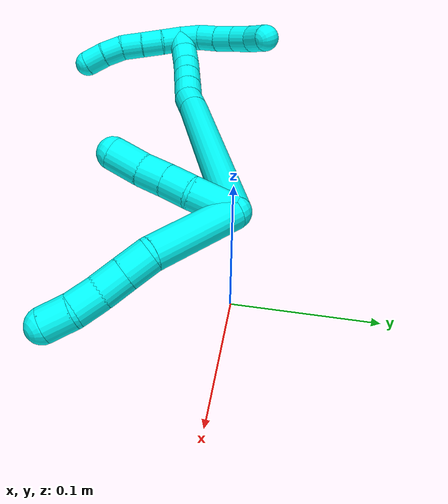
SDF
<sdf version="1.7">
 <world name="default">
  <model name="photoneo_s_sensor">
   <static>1</static>
   <pose>0 0 2 1.57079 1.57079 3.14159</pose>
   <link name="link">
    <inertial><mass>0.1</mass></inertial>
    <sensor name="sensor" type="depth">
     <update_rate>30</update_rate>
     <camera>
      <horizontal_fov>1.22</horizontal_fov>
      <image><width>1920</width><height>1200</height><format>B8G8R8</format></image>
      <clip><near>0.1</near><far>4</far></clip>
      <depth_camera><output>points</output></depth_camera>
     </camera>
     <plugin name="camera_plugin" filename="libgazebo_ros_depth_camera.so">
      <baseline>0.2</baseline>
      <alwaysOn>1</alwaysOn>
      <updateRate>0.0</updateRate>
      <cameraName>camera_ir</cameraName>
      <imageTopicName>/camera/color/image_raw</imageTopicName>
      <cameraInfoTopicName>/camera/color/camera_info</cameraInfoTopicName>
      <depthImageTopicName>/camera/depth/image_raw</depthImageTopicName>
      <depthImageCameraInfoTopicName>/camera/depth/camera_info</depthImageCameraInfoTopicName>
      <pointCloudTopicName>/camera/depth/points</pointCloudTopicName>
      <frameName>fr_optical</frameName>
      <pointCloudCutoff>0.1</pointCloudCutoff>
      <pointCloudCutoffMax>2.0</pointCloudCutoffMax>
      <distortionK1>0</distortionK1>
      <distortionK2>0</distortionK2>
      <distortionK3>0</distortionK3>
      <distortionT1>0</distortionT1>
      <distortionT2>0</distortionT2>
      <CxPrime>0</CxPrime>
      <Cx>0</Cx>
      <Cy>0</Cy>
      <focalLength>0</focalLength>
      <hackBaseline>0</hackBaseline>
     </plugin>
    </sensor>
   </link>
  </model>
  <model name="3">
   <static>0</static>
   <link name="3">
    <collision name="collision-cylinder-e_1_2_8">
     <pose>-0.002949 0.00374 -0.033526 -3.03049 -0.087199 1.33051</pose>
     <geometry><cylinder><radius>0.0125</radius><length>0.067725</length></cylinder></geometry>
     <surface>
      <friction><ode><mu>1.16</mu><mu2>1.16</mu2><slip1>0</slip1><slip2>0</slip2></ode></friction>
      <contact><ode><kp>1e+06</kp><kd>1</kd><max_vel>0</max_vel><min_depth>0.001</min_depth></ode></contact>
     </surface>
    </collision>
    <visual name="visual-cylinder-e_1_2_8">
     <pose>-0.002949 0.00374 -0.033526 -3.03049 -0.087199 1.33051</pose>
     <geometry><cylinder><radius>0.0125</radius><length>0.067725</length></cylinder></geometry>
     <material><ambient>0.003922 1 0.996078 1</ambient></material>
    </visual>
    <collision name="collision-cylinder-e_2_8_9">
     <pose>-0.006161 0.012074 -0.076469 -2.6878 -0.025093 0.108586</pose>
     <geometry><cylinder><radius>0.0125</radius><length>0.020963</length></cylinder></geometry>
     <surface>
      <friction><ode><mu>1.16</mu><mu2>1.16</mu2><slip1>0</slip1><slip2>0</slip2></ode></friction>
      <contact><ode><kp>1e+06</kp><kd>1</kd><max_vel>0</max_vel><min_depth>0.001</min_depth></ode></contact>
     </surface>
    </collision>
    <visual name="visual-cylinder-e_2_8_9">
     <pose>-0.006161 0.012074 -0.076469 -2.6878 -0.025093 0.108586</pose>
     <geometry><cylinder><radius>0.0125</radius><length>0.020963</length></cylinder></geometry>
     <material><ambient>0.003922 1 0.996078 1</ambient></material>
    </visual>
    <collision name="collision-cylinder-e_3_9_10">
     <pose>-0.006572 0.021055 -0.094916 -2.68925 -0.014737 0.064025</pose>
     <geometry><cylinder><radius>0.0125</radius><length>0.02008</length></cylinder></geometry>
     <surface>
      <friction><ode><mu>1.16</mu><mu2>1.16</mu2><slip1>0</slip1><slip2>0</slip2></ode></friction>
      <contact><ode><kp>1e+06</kp><kd>1</kd><max_vel>0</max_vel><min_depth>0.001</min_depth></ode></contact>
     </surface>
    </collision>
    <visual name="visual-cylinder-e_3_9_10">
     <pose>-0.006572 0.021055 -0.094916 -2.68925 -0.014737 0.064025</pose>
     <geometry><cylinder><radius>0.0125</radius><length>0.02008</length></cylinder></geometry>
     <material><ambient>0.003922 1 0.996078 1</ambient></material>
    </visual>
    <collision name="collision-cylinder-e_4_10_11">
     <pose>-0.007107 0.028713 -0.11358 -2.81431 -0.038069 0.229573</pose>
     <geometry><cylinder><radius>0.0125</radius><length>0.020364</length></cylinder></geometry>
     <surface>
      <friction><ode><mu>1.16</mu><mu2>1.16</mu2><slip1>0</slip1><slip2>0</slip2></ode></friction>
      <contact><ode><kp>1e+06</kp><kd>1</kd><max_vel>0</max_vel><min_depth>0.001</min_depth></ode></contact>
     </surface>
    </collision>
    <visual name="visual-cylinder-e_4_10_11">
     <pose>-0.007107 0.028713 -0.11358 -2.81431 -0.038069 0.229573</pose>
     <geometry><cylinder><radius>0.0125</radius><length>0.020364</length></cylinder></geometry>
     <material><ambient>0.003922 1 0.996078 1</ambient></material>
    </visual>
    <collision name="collision-cylinder-e_5_11_6">
     <pose>-0.009942 0.036893 -0.132091 -2.6364 -0.236698 0.863398</pose>
     <geometry><cylinder><radius>0.0125</radius><length>0.020868</length></cylinder></geometry>
     <surface>
      <friction><ode><mu>1.16</mu><mu2>1.16</mu2><slip1>0</slip1><slip2>0</slip2></ode></friction>
      <contact><ode><kp>1e+06</kp><kd>1</kd><max_vel>0</max_vel><min_depth>0.001</min_depth></ode></contact>
     </surface>
    </collision>
    <visual name="visual-cylinder-e_5_11_6">
     <pose>-0.009942 0.036893 -0.132091 -2.6364 -0.236698 0.863398</pose>
     <geometry><cylinder><radius>0.0125</radius><length>0.020868</length></cylinder></geometry>
     <material><ambient>0.003922 1 0.996078 1</ambient></material>
    </visual>
    <collision name="collision-cylinder-e_1_2_12">
     <pose>-0.01453 0.001617 -0.007274 -2.92282 -1.09691 2.78589</pose>
     <geometry><cylinder><radius>0.0125</radius><length>0.032659</length></cylinder></geometry>
     <surface>
      <friction><ode><mu>1.16</mu><mu2>1.16</mu2><slip1>0</slip1><slip2>0</slip2></ode></friction>
      <contact><ode><kp>1e+06</kp><kd>1</kd><max_vel>0</max_vel><min_depth>0.001</min_depth></ode></contact>
     </surface>
    </collision>
    <visual name="visual-cylinder-e_1_2_12">
     <pose>-0.01453 0.001617 -0.007274 -2.92282 -1.09691 2.78589</pose>
     <geometry><cylinder><radius>0.0125</radius><length>0.032659</length></cylinder></geometry>
     <material><ambient>0.003922 1 0.996078 1</ambient></material>
    </visual>
    <collision name="collision-cylinder-e_2_12_13">
     <pose>-0.038533 0.006084 -0.017227 -2.32529 -1.17928 1.99397</pose>
     <geometry><cylinder><radius>0.0125</radius><length>0.020497</length></cylinder></geometry>
     <surface>
      <friction><ode><mu>1.16</mu><mu2>1.16</mu2><slip1>0</slip1><slip2>0</slip2></ode></friction>
      <contact><ode><kp>1e+06</kp><kd>1</kd><max_vel>0</max_vel><min_depth>0.001</min_depth></ode></contact>
     </surface>
    </collision>
    <visual name="visual-cylinder-e_2_12_13">
     <pose>-0.038533 0.006084 -0.017227 -2.32529 -1.17928 1.99397</pose>
     <geometry><cylinder><radius>0.0125</radius><length>0.020497</length></cylinder></geometry>
     <material><ambient>0.003922 1 0.996078 1</ambient></material>
    </visual>
    <collision name="collision-cylinder-e_3_13_14">
     <pose>-0.057263 0.011731 -0.022956 -2.39926 -1.15033 2.06022</pose>
     <geometry><cylinder><radius>0.0125</radius><length>0.02028</length></cylinder></geometry>
     <surface>
      <friction><ode><mu>1.16</mu><mu2>1.16</mu2><slip1>0</slip1><slip2>0</slip2></ode></friction>
      <contact><ode><kp>1e+06</kp><kd>1</kd><max_vel>0</max_vel><min_depth>0.001</min_depth></ode></contact>
     </surface>
    </collision>
    <visual name="visual-cylinder-e_3_13_14">
     <pose>-0.057263 0.011731 -0.022956 -2.39926 -1.15033 2.06022</pose>
     <geometry><cylinder><radius>0.0125</radius><length>0.02028</length></cylinder></geometry>
     <material><ambient>0.003922 1 0.996078 1</ambient></material>
    </visual>
    <collision name="collision-cylinder-e_4_14_5">
     <pose>-0.079009 0.016558 -0.030043 -2.6761 -1.22368 2.49001</pose>
     <geometry><cylinder><radius>0.0125</radius><length>0.026564</length></cylinder></geometry>
     <surface>
      <friction><ode><mu>1.16</mu><mu2>1.16</mu2><slip1>0</slip1><slip2>0</slip2></ode></friction>
      <contact><ode><kp>1e+06</kp><kd>1</kd><max_vel>0</max_vel><min_depth>0.001</min_depth></ode></contact>
     </surface>
    </collision>
    <visual name="visual-cylinder-e_4_14_5">
     <pose>-0.079009 0.016558 -0.030043 -2.6761 -1.22368 2.49001</pose>
     <geometry><cylinder><radius>0.0125</radius><length>0.026564</length></cylinder></geometry>
     <material><ambient>0.003922 1 0.996078 1</ambient></material>
    </visual>
    <collision name="collision-cylinder-e_1_2_15">
     <pose>-0.064557 0.038051 0.046451 -0.686312 -0.821581 0.308775</pose>
     <geometry><cylinder><radius>0.0125</radius><length>0.176331</length></cylinder></geometry>
     <surface>
      <friction><ode><mu>1.16</mu><mu2>1.16</mu2><slip1>0</slip1><slip2>0</slip2></ode></friction>
      <contact><ode><kp>1e+06</kp><kd>1</kd><max_vel>0</max_vel><min_depth>0.001</min_depth></ode></contact>
     </surface>
    </collision>
    <visual name="visual-cylinder-e_1_2_15">
     <pose>-0.064557 0.038051 0.046451 -0.686312 -0.821581 0.308775</pose>
     <geometry><cylinder><radius>0.0125</radius><length>0.176331</length></cylinder></geometry>
     <material><ambient>0.003922 1 0.996078 1</ambient></material>
    </visual>
    <collision name="collision-cylinder-e_2_15_16">
     <pose>-0.137865 0.08078 0.098384 -0.706458 -0.881882 0.344545</pose>
     <geometry><cylinder><radius>0.0125</radius><length>0.022673</length></cylinder></geometry>
     <surface>
      <friction><ode><mu>1.16</mu><mu2>1.16</mu2><slip1>0</slip1><slip2>0</slip2></ode></friction>
      <contact><ode><kp>1e+06</kp><kd>1</kd><max_vel>0</max_vel><min_depth>0.001</min_depth></ode></contact>
     </surface>
    </collision>
    <visual name="visual-cylinder-e_2_15_16">
     <pose>-0.137865 0.08078 0.098384 -0.706458 -0.881882 0.344545</pose>
     <geometry><cylinder><radius>0.0125</radius><length>0.022673</length></cylinder></geometry>
     <material><ambient>0.003922 1 0.996078 1</ambient></material>
    </visual>
    <collision name="collision-cylinder-e_3_16_17">
     <pose>-0.154252 0.088153 0.110402 -0.391162 -0.823878 0.172697</pose>
     <geometry><cylinder><radius>0.0125</radius><length>0.020813</length></cylinder></geometry>
     <surface>
      <friction><ode><mu>1.16</mu><mu2>1.16</mu2><slip1>0</slip1><slip2>0</slip2></ode></friction>
      <contact><ode><kp>1e+06</kp><kd>1</kd><max_vel>0</max_vel><min_depth>0.001</min_depth></ode></contact>
     </surface>
    </collision>
    <visual name="visual-cylinder-e_3_16_17">
     <pose>-0.154252 0.088153 0.110402 -0.391162 -0.823878 0.172697</pose>
     <geometry><cylinder><radius>0.0125</radius><length>0.020813</length></cylinder></geometry>
     <material><ambient>0.003922 1 0.996078 1</ambient></material>
    </visual>
    <collision name="collision-cylinder-e_4_17_18">
     <pose>-0.169277 0.093528 0.123248 -0.401525 -0.82284 0.177121</pose>
     <geometry><cylinder><radius>0.0125</radius><length>0.020158</length></cylinder></geometry>
     <surface>
      <friction><ode><mu>1.16</mu><mu2>1.16</mu2><slip1>0</slip1><slip2>0</slip2></ode></friction>
      <contact><ode><kp>1e+06</kp><kd>1</kd><max_vel>0</max_vel><min_depth>0.001</min_depth></ode></contact>
     </surface>
    </collision>
    <visual name="visual-cylinder-e_4_17_18">
     <pose>-0.169277 0.093528 0.123248 -0.401525 -0.82284 0.177121</pose>
     <geometry><cylinder><radius>0.0125</radius><length>0.020158</length></cylinder></geometry>
     <material><ambient>0.003922 1 0.996078 1</ambient></material>
    </visual>
    <collision name="collision-cylinder-e_5_18_19">
     <pose>-0.184019 0.098758 0.135856 -0.384882 -0.824836 0.170088</pose>
     <geometry><cylinder><radius>0.0125</radius><length>0.020024</length></cylinder></geometry>
     <surface>
      <friction><ode><mu>1.16</mu><mu2>1.16</mu2><slip1>0</slip1><slip2>0</slip2></ode></friction>
      <contact><ode><kp>1e+06</kp><kd>1</kd><max_vel>0</max_vel><min_depth>0.001</min_depth></ode></contact>
     </surface>
    </collision>
    <visual name="visual-cylinder-e_5_18_19">
     <pose>-0.184019 0.098758 0.135856 -0.384882 -0.824836 0.170088</pose>
     <geometry><cylinder><radius>0.0125</radius><length>0.020024</length></cylinder></geometry>
     <material><ambient>0.003922 1 0.996078 1</ambient></material>
    </visual>
    <collision name="collision-cylinder-e_6_19_20">
     <pose>-0.199633 0.102248 0.14771 -0.167276 -0.972143 0.08853</pose>
     <geometry><cylinder><radius>0.0125</radius><length>0.02</length></cylinder></geometry>
     <surface>
      <friction><ode><mu>1.16</mu><mu2>1.16</mu2><slip1>0</slip1><slip2>0</slip2></ode></friction>
      <contact><ode><kp>1e+06</kp><kd>1</kd><max_vel>0</max_vel><min_depth>0.001</min_depth></ode></contact>
     </surface>
    </collision>
    <visual name="visual-cylinder-e_6_19_20">
     <pose>-0.199633 0.102248 0.14771 -0.167276 -0.972143 0.08853</pose>
     <geometry><cylinder><radius>0.0125</radius><length>0.02</length></cylinder></geometry>
     <material><ambient>0.003922 1 0.996078 1</ambient></material>
    </visual>
    <collision name="collision-cylinder-e_7_20_1">
     <pose>-0.216365 0.103817 0.158544 -0.119023 -1.01048 0.065889</pose>
     <geometry><cylinder><radius>0.0125</radius><length>0.02</length></cylinder></geometry>
     <surface>
      <friction><ode><mu>1.16</mu><mu2>1.16</mu2><slip1>0</slip1><slip2>0</slip2></ode></friction>
      <contact><ode><kp>1e+06</kp><kd>1</kd><max_vel>0</max_vel><min_depth>0.001</min_depth></ode></contact>
     </surface>
    </collision>
    <visual name="visual-cylinder-e_7_20_1">
     <pose>-0.216365 0.103817 0.158544 -0.119023 -1.01048 0.065889</pose>
     <geometry><cylinder><radius>0.0125</radius><length>0.02</length></cylinder></geometry>
     <material><ambient>0.003922 1 0.996078 1</ambient></material>
    </visual>
    <collision name="collision-cylinder-e_1_1_21">
     <pose>-0.218385 0.099885 0.16995 0.640035 0.701187 0.241217</pose>
     <geometry><cylinder><radius>0.0125</radius><length>0.02</length></cylinder></geometry>
     <surface>
      <friction><ode><mu>1.16</mu><mu2>1.16</mu2><slip1>0</slip1><slip2>0</slip2></ode></friction>
      <contact><ode><kp>1e+06</kp><kd>1</kd><max_vel>0</max_vel><min_depth>0.001</min_depth></ode></contact>
     </surface>
    </collision>
    <visual name="visual-cylinder-e_1_1_21">
     <pose>-0.218385 0.099885 0.16995 0.640035 0.701187 0.241217</pose>
     <geometry><cylinder><radius>0.0125</radius><length>0.02</length></cylinder></geometry>
     <material><ambient>0.003922 1 0.996078 1</ambient></material>
    </visual>
    <collision name="collision-cylinder-e_2_21_22">
     <pose>-0.203924 0.090357 0.179424 0.977721 0.928965 0.520927</pose>
     <geometry><cylinder><radius>0.0125</radius><length>0.02</length></cylinder></geometry>
     <surface>
      <friction><ode><mu>1.16</mu><mu2>1.16</mu2><slip1>0</slip1><slip2>0</slip2></ode></friction>
      <contact><ode><kp>1e+06</kp><kd>1</kd><max_vel>0</max_vel><min_depth>0.001</min_depth></ode></contact>
     </surface>
    </collision>
    <visual name="visual-cylinder-e_2_21_22">
     <pose>-0.203924 0.090357 0.179424 0.977721 0.928965 0.520927</pose>
     <geometry><cylinder><radius>0.0125</radius><length>0.02</length></cylinder></geometry>
     <material><ambient>0.003922 1 0.996078 1</ambient></material>
    </visual>
    <collision name="collision-cylinder-e_3_22_23">
     <pose>-0.188267 0.079738 0.185861 1.07059 0.870523 0.538167</pose>
     <geometry><cylinder><radius>0.0125</radius><length>0.02</length></cylinder></geometry>
     <surface>
      <friction><ode><mu>1.16</mu><mu2>1.16</mu2><slip1>0</slip1><slip2>0</slip2></ode></friction>
      <contact><ode><kp>1e+06</kp><kd>1</kd><max_vel>0</max_vel><min_depth>0.001</min_depth></ode></contact>
     </surface>
    </collision>
    <visual name="visual-cylinder-e_3_22_23">
     <pose>-0.188267 0.079738 0.185861 1.07059 0.870523 0.538167</pose>
     <geometry><cylinder><radius>0.0125</radius><length>0.02</length></cylinder></geometry>
     <material><ambient>0.003922 1 0.996078 1</ambient></material>
    </visual>
    <collision name="collision-cylinder-e_4_23_24">
     <pose>-0.172966 0.067857 0.190578 1.31522 0.87172 0.69054</pose>
     <geometry><cylinder><radius>0.0125</radius><length>0.02</length></cylinder></geometry>
     <surface>
      <friction><ode><mu>1.16</mu><mu2>1.16</mu2><slip1>0</slip1><slip2>0</slip2></ode></friction>
      <contact><ode><kp>1e+06</kp><kd>1</kd><max_vel>0</max_vel><min_depth>0.001</min_depth></ode></contact>
     </surface>
    </collision>
    <visual name="visual-cylinder-e_4_23_24">
     <pose>-0.172966 0.067857 0.190578 1.31522 0.87172 0.69054</pose>
     <geometry><cylinder><radius>0.0125</radius><length>0.02</length></cylinder></geometry>
     <material><ambient>0.003922 1 0.996078 1</ambient></material>
    </visual>
    <collision name="collision-cylinder-e_5_24_4">
     <pose>-0.158341 0.054479 0.191709 1.64 0.771328 0.820803</pose>
     <geometry><cylinder><radius>0.0125</radius><length>0.02</length></cylinder></geometry>
     <surface>
      <friction><ode><mu>1.16</mu><mu2>1.16</mu2><slip1>0</slip1><slip2>0</slip2></ode></friction>
      <contact><ode><kp>1e+06</kp><kd>1</kd><max_vel>0</max_vel><min_depth>0.001</min_depth></ode></contact>
     </surface>
    </collision>
    <visual name="visual-cylinder-e_5_24_4">
     <pose>-0.158341 0.054479 0.191709 1.64 0.771328 0.820803</pose>
     <geometry><cylinder><radius>0.0125</radius><length>0.02</length></cylinder></geometry>
     <material><ambient>0.003922 1 0.996078 1</ambient></material>
    </visual>
    <collision name="collision-cylinder-e_1_1_25">
     <pose>-0.229171 0.106991 0.155176 -2.85551 -0.448364 2.01486</pose>
     <geometry><cylinder><radius>0.0125</radius><length>0.02</length></cylinder></geometry>
     <surface>
      <friction><ode><mu>1.16</mu><mu2>1.16</mu2><slip1>0</slip1><slip2>0</slip2></ode></friction>
      <contact><ode><kp>1e+06</kp><kd>1</kd><max_vel>0</max_vel><min_depth>0.001</min_depth></ode></contact>
     </surface>
    </collision>
    <visual name="visual-cylinder-e_1_1_25">
     <pose>-0.229171 0.106991 0.155176 -2.85551 -0.448364 2.01486</pose>
     <geometry><cylinder><radius>0.0125</radius><length>0.02</length></cylinder></geometry>
     <material><ambient>0.003922 1 0.996078 1</ambient></material>
    </visual>
    <collision name="collision-cylinder-e_2_25_26">
     <pose>-0.23864 0.112933 0.138651 -2.73438 -0.539164 1.85814</pose>
     <geometry><cylinder><radius>0.0125</radius><length>0.02</length></cylinder></geometry>
     <surface>
      <friction><ode><mu>1.16</mu><mu2>1.16</mu2><slip1>0</slip1><slip2>0</slip2></ode></friction>
      <contact><ode><kp>1e+06</kp><kd>1</kd><max_vel>0</max_vel><min_depth>0.001</min_depth></ode></contact>
     </surface>
    </collision>
    <visual name="visual-cylinder-e_2_25_26">
     <pose>-0.23864 0.112933 0.138651 -2.73438 -0.539164 1.85814</pose>
     <geometry><cylinder><radius>0.0125</radius><length>0.02</length></cylinder></geometry>
     <material><ambient>0.003922 1 0.996078 1</ambient></material>
    </visual>
    <collision name="collision-cylinder-e_3_26_27">
     <pose>-0.249216 0.12013 0.123291 -2.67171 -0.575352 1.78121</pose>
     <geometry><cylinder><radius>0.0125</radius><length>0.02</length></cylinder></geometry>
     <surface>
      <friction><ode><mu>1.16</mu><mu2>1.16</mu2><slip1>0</slip1><slip2>0</slip2></ode></friction>
      <contact><ode><kp>1e+06</kp><kd>1</kd><max_vel>0</max_vel><min_depth>0.001</min_depth></ode></contact>
     </surface>
    </collision>
    <visual name="visual-cylinder-e_3_26_27">
     <pose>-0.249216 0.12013 0.123291 -2.67171 -0.575352 1.78121</pose>
     <geometry><cylinder><radius>0.0125</radius><length>0.02</length></cylinder></geometry>
     <material><ambient>0.003922 1 0.996078 1</ambient></material>
    </visual>
    <collision name="collision-cylinder-e_4_27_28">
     <pose>-0.258427 0.129097 0.108123 -2.54971 -0.386519 1.14128</pose>
     <geometry><cylinder><radius>0.0125</radius><length>0.02</length></cylinder></geometry>
     <surface>
      <friction><ode><mu>1.16</mu><mu2>1.16</mu2><slip1>0</slip1><slip2>0</slip2></ode></friction>
      <contact><ode><kp>1e+06</kp><kd>1</kd><max_vel>0</max_vel><min_depth>0.001</min_depth></ode></contact>
     </surface>
    </collision>
    <visual name="visual-cylinder-e_4_27_28">
     <pose>-0.258427 0.129097 0.108123 -2.54971 -0.386519 1.14128</pose>
     <geometry><cylinder><radius>0.0125</radius><length>0.02</length></cylinder></geometry>
     <material><ambient>0.003922 1 0.996078 1</ambient></material>
    </visual>
    <collision name="collision-cylinder-e_5_28_3">
     <pose>-0.265115 0.140361 0.093067 -2.45044 -0.296118 0.785508</pose>
     <geometry><cylinder><radius>0.0125</radius><length>0.02</length></cylinder></geometry>
     <surface>
      <friction><ode><mu>1.16</mu><mu2>1.16</mu2><slip1>0</slip1><slip2>0</slip2></ode></friction>
      <contact><ode><kp>1e+06</kp><kd>1</kd><max_vel>0</max_vel><min_depth>0.001</min_depth></ode></contact>
     </surface>
    </collision>
    <visual name="visual-cylinder-e_5_28_3">
     <pose>-0.265115 0.140361 0.093067 -2.45044 -0.296118 0.785508</pose>
     <geometry><cylinder><radius>0.0125</radius><length>0.02</length></cylinder></geometry>
     <material><ambient>0.003922 1 0.996078 1</ambient></material>
    </visual>
    <collision name="collision-sphere-3">
     <pose>-0.268033 0.146458 0.085697 0 -0 0</pose>
     <geometry><sphere><radius>0.0125</radius></sphere></geometry>
     <surface>
      <friction><ode><mu>1.16</mu><mu2>1.16</mu2><slip1>0</slip1><slip2>0</slip2></ode></friction>
      <contact><ode><kp>1e+06</kp><kd>1</kd><max_vel>0</max_vel><min_depth>0.001</min_depth></ode></contact>
     </surface>
    </collision>
    <visual name="visual-sphere-3">
     <pose>-0.268033 0.146458 0.085697 0 -0 0</pose>
     <geometry><sphere><radius>0.0125</radius></sphere></geometry>
     <material><ambient>0.003922 1 0.996078 1</ambient></material>
    </visual>
    <collision name="collision-sphere-28">
     <pose>-0.262196 0.134264 0.100436 0 -0 0</pose>
     <geometry><sphere><radius>0.0125</radius></sphere></geometry>
     <surface>
      <friction><ode><mu>1.16</mu><mu2>1.16</mu2><slip1>0</slip1><slip2>0</slip2></ode></friction>
      <contact><ode><kp>1e+06</kp><kd>1</kd><max_vel>0</max_vel><min_depth>0.001</min_depth></ode></contact>
     </surface>
    </collision>
    <visual name="visual-sphere-28">
     <pose>-0.262196 0.134264 0.100436 0 -0 0</pose>
     <geometry><sphere><radius>0.0125</radius></sphere></geometry>
     <material><ambient>0.003922 1 0.996078 1</ambient></material>
    </visual>
    <collision name="collision-sphere-27">
     <pose>-0.254657 0.123929 0.11581 0 -0 0</pose>
     <geometry><sphere><radius>0.0125</radius></sphere></geometry>
     <surface>
      <friction><ode><mu>1.16</mu><mu2>1.16</mu2><slip1>0</slip1><slip2>0</slip2></ode></friction>
      <contact><ode><kp>1e+06</kp><kd>1</kd><max_vel>0</max_vel><min_depth>0.001</min_depth></ode></contact>
     </surface>
    </collision>
    <visual name="visual-sphere-27">
     <pose>-0.254657 0.123929 0.11581 0 -0 0</pose>
     <geometry><sphere><radius>0.0125</radius></sphere></geometry>
     <material><ambient>0.003922 1 0.996078 1</ambient></material>
    </visual>
    <collision name="collision-sphere-26">
     <pose>-0.243775 0.116331 0.130771 0 -0 0</pose>
     <geometry><sphere><radius>0.0125</radius></sphere></geometry>
     <surface>
      <friction><ode><mu>1.16</mu><mu2>1.16</mu2><slip1>0</slip1><slip2>0</slip2></ode></friction>
      <contact><ode><kp>1e+06</kp><kd>1</kd><max_vel>0</max_vel><min_depth>0.001</min_depth></ode></contact>
     </surface>
    </collision>
    <visual name="visual-sphere-26">
     <pose>-0.243775 0.116331 0.130771 0 -0 0</pose>
     <geometry><sphere><radius>0.0125</radius></sphere></geometry>
     <material><ambient>0.003922 1 0.996078 1</ambient></material>
    </visual>
    <collision name="collision-sphere-25">
     <pose>-0.233506 0.109534 0.146531 0 -0 0</pose>
     <geometry><sphere><radius>0.0125</radius></sphere></geometry>
     <surface>
      <friction><ode><mu>1.16</mu><mu2>1.16</mu2><slip1>0</slip1><slip2>0</slip2></ode></friction>
      <contact><ode><kp>1e+06</kp><kd>1</kd><max_vel>0</max_vel><min_depth>0.001</min_depth></ode></contact>
     </surface>
    </collision>
    <visual name="visual-sphere-25">
     <pose>-0.233506 0.109534 0.146531 0 -0 0</pose>
     <geometry><sphere><radius>0.0125</radius></sphere></geometry>
     <material><ambient>0.003922 1 0.996078 1</ambient></material>
    </visual>
    <collision name="collision-sphere-4">
     <pose>-0.15137 0.047326 0.191214 0 -0 0</pose>
     <geometry><sphere><radius>0.0125</radius></sphere></geometry>
     <surface>
      <friction><ode><mu>1.16</mu><mu2>1.16</mu2><slip1>0</slip1><slip2>0</slip2></ode></friction>
      <contact><ode><kp>1e+06</kp><kd>1</kd><max_vel>0</max_vel><min_depth>0.001</min_depth></ode></contact>
     </surface>
    </collision>
    <visual name="visual-sphere-4">
     <pose>-0.15137 0.047326 0.191214 0 -0 0</pose>
     <geometry><sphere><radius>0.0125</radius></sphere></geometry>
     <material><ambient>0.003922 1 0.996078 1</ambient></material>
    </visual>
    <collision name="collision-sphere-24">
     <pose>-0.165312 0.061631 0.192205 0 -0 0</pose>
     <geometry><sphere><radius>0.0125</radius></sphere></geometry>
     <surface>
      <friction><ode><mu>1.16</mu><mu2>1.16</mu2><slip1>0</slip1><slip2>0</slip2></ode></friction>
      <contact><ode><kp>1e+06</kp><kd>1</kd><max_vel>0</max_vel><min_depth>0.001</min_depth></ode></contact>
     </surface>
    </collision>
    <visual name="visual-sphere-24">
     <pose>-0.165312 0.061631 0.192205 0 -0 0</pose>
     <geometry><sphere><radius>0.0125</radius></sphere></geometry>
     <material><ambient>0.003922 1 0.996078 1</ambient></material>
    </visual>
    <collision name="collision-sphere-23">
     <pose>-0.18062 0.074084 0.188952 0 -0 0</pose>
     <geometry><sphere><radius>0.0125</radius></sphere></geometry>
     <surface>
      <friction><ode><mu>1.16</mu><mu2>1.16</mu2><slip1>0</slip1><slip2>0</slip2></ode></friction>
      <contact><ode><kp>1e+06</kp><kd>1</kd><max_vel>0</max_vel><min_depth>0.001</min_depth></ode></contact>
     </surface>
    </collision>
    <visual name="visual-sphere-23">
     <pose>-0.18062 0.074084 0.188952 0 -0 0</pose>
     <geometry><sphere><radius>0.0125</radius></sphere></geometry>
     <material><ambient>0.003922 1 0.996078 1</ambient></material>
    </visual>
    <collision name="collision-sphere-22">
     <pose>-0.195914 0.085393 0.18277 0 -0 0</pose>
     <geometry><sphere><radius>0.0125</radius></sphere></geometry>
     <surface>
      <friction><ode><mu>1.16</mu><mu2>1.16</mu2><slip1>0</slip1><slip2>0</slip2></ode></friction>
      <contact><ode><kp>1e+06</kp><kd>1</kd><max_vel>0</max_vel><min_depth>0.001</min_depth></ode></contact>
     </surface>
    </collision>
    <visual name="visual-sphere-22">
     <pose>-0.195914 0.085393 0.18277 0 -0 0</pose>
     <geometry><sphere><radius>0.0125</radius></sphere></geometry>
     <material><ambient>0.003922 1 0.996078 1</ambient></material>
    </visual>
    <collision name="collision-sphere-21">
     <pose>-0.211934 0.095322 0.176078 0 -0 0</pose>
     <geometry><sphere><radius>0.0125</radius></sphere></geometry>
     <surface>
      <friction><ode><mu>1.16</mu><mu2>1.16</mu2><slip1>0</slip1><slip2>0</slip2></ode></friction>
      <contact><ode><kp>1e+06</kp><kd>1</kd><max_vel>0</max_vel><min_depth>0.001</min_depth></ode></contact>
     </surface>
    </collision>
    <visual name="visual-sphere-21">
     <pose>-0.211934 0.095322 0.176078 0 -0 0</pose>
     <geometry><sphere><radius>0.0125</radius></sphere></geometry>
     <material><ambient>0.003922 1 0.996078 1</ambient></material>
    </visual>
    <collision name="collision-sphere-1">
     <pose>-0.224836 0.104448 0.163821 0 -0 0</pose>
     <geometry><sphere><radius>0.0125</radius></sphere></geometry>
     <surface>
      <friction><ode><mu>1.16</mu><mu2>1.16</mu2><slip1>0</slip1><slip2>0</slip2></ode></friction>
      <contact><ode><kp>1e+06</kp><kd>1</kd><max_vel>0</max_vel><min_depth>0.001</min_depth></ode></contact>
     </surface>
    </collision>
    <visual name="visual-sphere-1">
     <pose>-0.224836 0.104448 0.163821 0 -0 0</pose>
     <geometry><sphere><radius>0.0125</radius></sphere></geometry>
     <material><ambient>0.003922 1 0.996078 1</ambient></material>
    </visual>
    <collision name="collision-sphere-6">
     <pose>-0.012388 0.041802 -0.140967 0 -0 0</pose>
     <geometry><sphere><radius>0.0125</radius></sphere></geometry>
     <surface>
      <friction><ode><mu>1.16</mu><mu2>1.16</mu2><slip1>0</slip1><slip2>0</slip2></ode></friction>
      <contact><ode><kp>1e+06</kp><kd>1</kd><max_vel>0</max_vel><min_depth>0.001</min_depth></ode></contact>
     </surface>
    </collision>
    <visual name="visual-sphere-6">
     <pose>-0.012388 0.041802 -0.140967 0 -0 0</pose>
     <geometry><sphere><radius>0.0125</radius></sphere></geometry>
     <material><ambient>0.003922 1 0.996078 1</ambient></material>
    </visual>
    <collision name="collision-sphere-11">
     <pose>-0.007495 0.031984 -0.123215 0 -0 0</pose>
     <geometry><sphere><radius>0.0125</radius></sphere></geometry>
     <surface>
      <friction><ode><mu>1.16</mu><mu2>1.16</mu2><slip1>0</slip1><slip2>0</slip2></ode></friction>
      <contact><ode><kp>1e+06</kp><kd>1</kd><max_vel>0</max_vel><min_depth>0.001</min_depth></ode></contact>
     </surface>
    </collision>
    <visual name="visual-sphere-11">
     <pose>-0.007495 0.031984 -0.123215 0 -0 0</pose>
     <geometry><sphere><radius>0.0125</radius></sphere></geometry>
     <material><ambient>0.003922 1 0.996078 1</ambient></material>
    </visual>
    <collision name="collision-sphere-10">
     <pose>-0.00672 0.025442 -0.103945 0 -0 0</pose>
     <geometry><sphere><radius>0.0125</radius></sphere></geometry>
     <surface>
      <friction><ode><mu>1.16</mu><mu2>1.16</mu2><slip1>0</slip1><slip2>0</slip2></ode></friction>
      <contact><ode><kp>1e+06</kp><kd>1</kd><max_vel>0</max_vel><min_depth>0.001</min_depth></ode></contact>
     </surface>
    </collision>
    <visual name="visual-sphere-10">
     <pose>-0.00672 0.025442 -0.103945 0 -0 0</pose>
     <geometry><sphere><radius>0.0125</radius></sphere></geometry>
     <material><ambient>0.003922 1 0.996078 1</ambient></material>
    </visual>
    <collision name="collision-sphere-9">
     <pose>-0.006424 0.016667 -0.085887 0 -0 0</pose>
     <geometry><sphere><radius>0.0125</radius></sphere></geometry>
     <surface>
      <friction><ode><mu>1.16</mu><mu2>1.16</mu2><slip1>0</slip1><slip2>0</slip2></ode></friction>
      <contact><ode><kp>1e+06</kp><kd>1</kd><max_vel>0</max_vel><min_depth>0.001</min_depth></ode></contact>
     </surface>
    </collision>
    <visual name="visual-sphere-9">
     <pose>-0.006424 0.016667 -0.085887 0 -0 0</pose>
     <geometry><sphere><radius>0.0125</radius></sphere></geometry>
     <material><ambient>0.003922 1 0.996078 1</ambient></material>
    </visual>
    <collision name="collision-sphere-2">
     <geometry><sphere><radius>0.0125</radius></sphere></geometry>
     <surface>
      <friction><ode><mu>1.16</mu><mu2>1.16</mu2><slip1>0</slip1><slip2>0</slip2></ode></friction>
      <contact><ode><kp>1e+06</kp><kd>1</kd><max_vel>0</max_vel><min_depth>0.001</min_depth></ode></contact>
     </surface>
    </collision>
    <visual name="visual-sphere-2">
     <geometry><sphere><radius>0.0125</radius></sphere></geometry>
     <material><ambient>0.003922 1 0.996078 1</ambient></material>
    </visual>
    <collision name="collision-sphere-19">
     <pose>-0.191372 0.101309 0.142154 0 -0 0</pose>
     <geometry><sphere><radius>0.0125</radius></sphere></geometry>
     <surface>
      <friction><ode><mu>1.16</mu><mu2>1.16</mu2><slip1>0</slip1><slip2>0</slip2></ode></friction>
      <contact><ode><kp>1e+06</kp><kd>1</kd><max_vel>0</max_vel><min_depth>0.001</min_depth></ode></contact>
     </surface>
    </collision>
    <visual name="visual-sphere-19">
     <pose>-0.191372 0.101309 0.142154 0 -0 0</pose>
     <geometry><sphere><radius>0.0125</radius></sphere></geometry>
     <material><ambient>0.003922 1 0.996078 1</ambient></material>
    </visual>
    <collision name="collision-sphere-8">
     <pose>-0.005898 0.00748 -0.067051 0 -0 0</pose>
     <geometry><sphere><radius>0.0125</radius></sphere></geometry>
     <surface>
      <friction><ode><mu>1.16</mu><mu2>1.16</mu2><slip1>0</slip1><slip2>0</slip2></ode></friction>
      <contact><ode><kp>1e+06</kp><kd>1</kd><max_vel>0</max_vel><min_depth>0.001</min_depth></ode></contact>
     </surface>
    </collision>
    <visual name="visual-sphere-8">
     <pose>-0.005898 0.00748 -0.067051 0 -0 0</pose>
     <geometry><sphere><radius>0.0125</radius></sphere></geometry>
     <material><ambient>0.003922 1 0.996078 1</ambient></material>
    </visual>
    <collision name="collision-sphere-12">
     <pose>-0.02906 0.003235 -0.014549 0 -0 0</pose>
     <geometry><sphere><radius>0.0125</radius></sphere></geometry>
     <surface>
      <friction><ode><mu>1.16</mu><mu2>1.16</mu2><slip1>0</slip1><slip2>0</slip2></ode></friction>
      <contact><ode><kp>1e+06</kp><kd>1</kd><max_vel>0</max_vel><min_depth>0.001</min_depth></ode></contact>
     </surface>
    </collision>
    <visual name="visual-sphere-12">
     <pose>-0.02906 0.003235 -0.014549 0 -0 0</pose>
     <geometry><sphere><radius>0.0125</radius></sphere></geometry>
     <material><ambient>0.003922 1 0.996078 1</ambient></material>
    </visual>
    <collision name="collision-sphere-13">
     <pose>-0.048006 0.008933 -0.019906 0 -0 0</pose>
     <geometry><sphere><radius>0.0125</radius></sphere></geometry>
     <surface>
      <friction><ode><mu>1.16</mu><mu2>1.16</mu2><slip1>0</slip1><slip2>0</slip2></ode></friction>
      <contact><ode><kp>1e+06</kp><kd>1</kd><max_vel>0</max_vel><min_depth>0.001</min_depth></ode></contact>
     </surface>
    </collision>
    <visual name="visual-sphere-13">
     <pose>-0.048006 0.008933 -0.019906 0 -0 0</pose>
     <geometry><sphere><radius>0.0125</radius></sphere></geometry>
     <material><ambient>0.003922 1 0.996078 1</ambient></material>
    </visual>
    <collision name="collision-sphere-14">
     <pose>-0.066519 0.014529 -0.026006 0 -0 0</pose>
     <geometry><sphere><radius>0.0125</radius></sphere></geometry>
     <surface>
      <friction><ode><mu>1.16</mu><mu2>1.16</mu2><slip1>0</slip1><slip2>0</slip2></ode></friction>
      <contact><ode><kp>1e+06</kp><kd>1</kd><max_vel>0</max_vel><min_depth>0.001</min_depth></ode></contact>
     </surface>
    </collision>
    <visual name="visual-sphere-14">
     <pose>-0.066519 0.014529 -0.026006 0 -0 0</pose>
     <geometry><sphere><radius>0.0125</radius></sphere></geometry>
     <material><ambient>0.003922 1 0.996078 1</ambient></material>
    </visual>
    <collision name="collision-sphere-5">
     <pose>-0.091499 0.018586 -0.034081 0 -0 0</pose>
     <geometry><sphere><radius>0.0125</radius></sphere></geometry>
     <surface>
      <friction><ode><mu>1.16</mu><mu2>1.16</mu2><slip1>0</slip1><slip2>0</slip2></ode></friction>
      <contact><ode><kp>1e+06</kp><kd>1</kd><max_vel>0</max_vel><min_depth>0.001</min_depth></ode></contact>
     </surface>
    </collision>
    <visual name="visual-sphere-5">
     <pose>-0.091499 0.018586 -0.034081 0 -0 0</pose>
     <geometry><sphere><radius>0.0125</radius></sphere></geometry>
     <material><ambient>0.003922 1 0.996078 1</ambient></material>
    </visual>
    <collision name="collision-sphere-15">
     <pose>-0.129114 0.076101 0.092902 0 -0 0</pose>
     <geometry><sphere><radius>0.0125</radius></sphere></geometry>
     <surface>
      <friction><ode><mu>1.16</mu><mu2>1.16</mu2><slip1>0</slip1><slip2>0</slip2></ode></friction>
      <contact><ode><kp>1e+06</kp><kd>1</kd><max_vel>0</max_vel><min_depth>0.001</min_depth></ode></contact>
     </surface>
    </collision>
    <visual name="visual-sphere-15">
     <pose>-0.129114 0.076101 0.092902 0 -0 0</pose>
     <geometry><sphere><radius>0.0125</radius></sphere></geometry>
     <material><ambient>0.003922 1 0.996078 1</ambient></material>
    </visual>
    <collision name="collision-sphere-16">
     <pose>-0.146616 0.085458 0.103866 0 -0 0</pose>
     <geometry><sphere><radius>0.0125</radius></sphere></geometry>
     <surface>
      <friction><ode><mu>1.16</mu><mu2>1.16</mu2><slip1>0</slip1><slip2>0</slip2></ode></friction>
      <contact><ode><kp>1e+06</kp><kd>1</kd><max_vel>0</max_vel><min_depth>0.001</min_depth></ode></contact>
     </surface>
    </collision>
    <visual name="visual-sphere-16">
     <pose>-0.146616 0.085458 0.103866 0 -0 0</pose>
     <geometry><sphere><radius>0.0125</radius></sphere></geometry>
     <material><ambient>0.003922 1 0.996078 1</ambient></material>
    </visual>
    <collision name="collision-sphere-17">
     <pose>-0.161888 0.090849 0.116938 0 -0 0</pose>
     <geometry><sphere><radius>0.0125</radius></sphere></geometry>
     <surface>
      <friction><ode><mu>1.16</mu><mu2>1.16</mu2><slip1>0</slip1><slip2>0</slip2></ode></friction>
      <contact><ode><kp>1e+06</kp><kd>1</kd><max_vel>0</max_vel><min_depth>0.001</min_depth></ode></contact>
     </surface>
    </collision>
    <visual name="visual-sphere-17">
     <pose>-0.161888 0.090849 0.116938 0 -0 0</pose>
     <geometry><sphere><radius>0.0125</radius></sphere></geometry>
     <material><ambient>0.003922 1 0.996078 1</ambient></material>
    </visual>
    <collision name="collision-sphere-18">
     <pose>-0.176665 0.096207 0.129558 0 -0 0</pose>
     <geometry><sphere><radius>0.0125</radius></sphere></geometry>
     <surface>
      <friction><ode><mu>1.16</mu><mu2>1.16</mu2><slip1>0</slip1><slip2>0</slip2></ode></friction>
      <contact><ode><kp>1e+06</kp><kd>1</kd><max_vel>0</max_vel><min_depth>0.001</min_depth></ode></contact>
     </surface>
    </collision>
    <visual name="visual-sphere-18">
     <pose>-0.176665 0.096207 0.129558 0 -0 0</pose>
     <geometry><sphere><radius>0.0125</radius></sphere></geometry>
     <material><ambient>0.003922 1 0.996078 1</ambient></material>
    </visual>
    <collision name="collision-sphere-20">
     <pose>-0.207894 0.103186 0.153267 0 -0 0</pose>
     <geometry><sphere><radius>0.0125</radius></sphere></geometry>
     <surface>
      <friction><ode><mu>1.16</mu><mu2>1.16</mu2><slip1>0</slip1><slip2>0</slip2></ode></friction>
      <contact><ode><kp>1e+06</kp><kd>1</kd><max_vel>0</max_vel><min_depth>0.001</min_depth></ode></contact>
     </surface>
    </collision>
    <visual name="visual-sphere-20">
     <pose>-0.207894 0.103186 0.153267 0 -0 0</pose>
     <geometry><sphere><radius>0.0125</radius></sphere></geometry>
     <material><ambient>0.003922 1 0.996078 1</ambient></material>
    </visual>
    <inertial>
     <pose>-0.109498 0.055381 0.056084 0 -0 0</pose>
     <mass>0.75</mass>
     <inertia>
      <ixx>0.000434</ixx>
      <ixy>0</ixy>
      <ixz>0</ixz>
      <iyy>0.000569</iyy>
      <iyz>0</iyz>
      <izz>0.000143</izz>
     </inertia>
    </inertial>
   </link>
   <pose>-0.043518 -0.005078 0.044888 -1.57746 0.392032 0.909297</pose>
  </model>
 </world>
</sdf>
